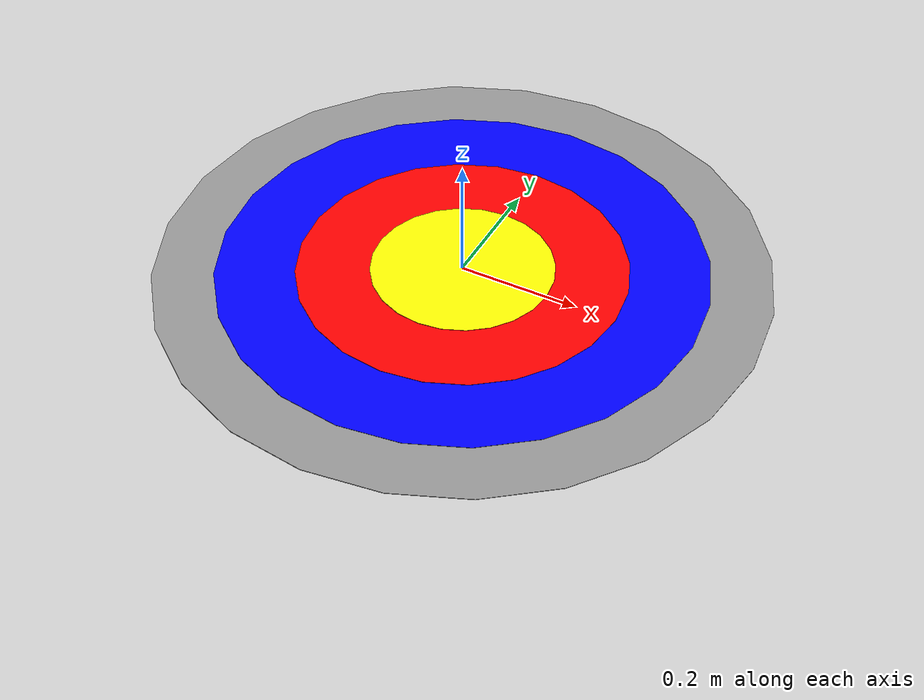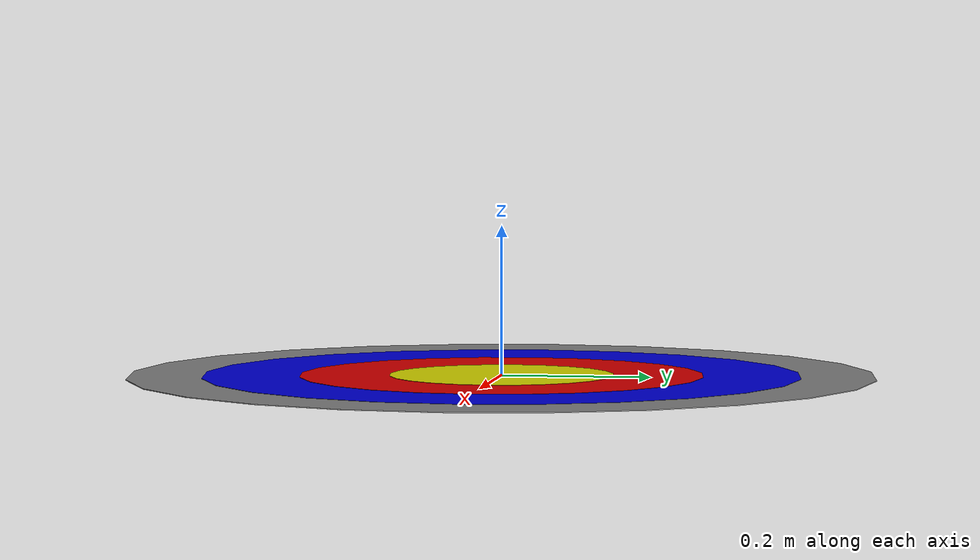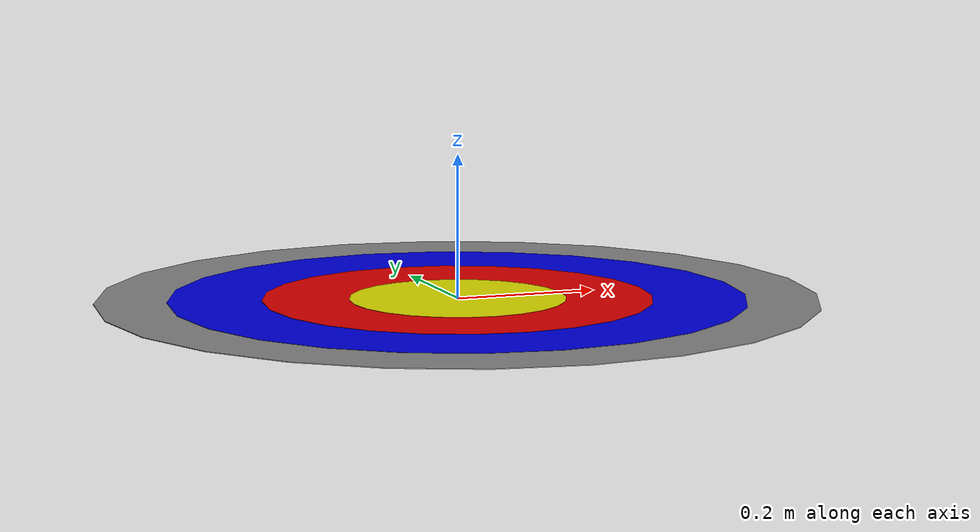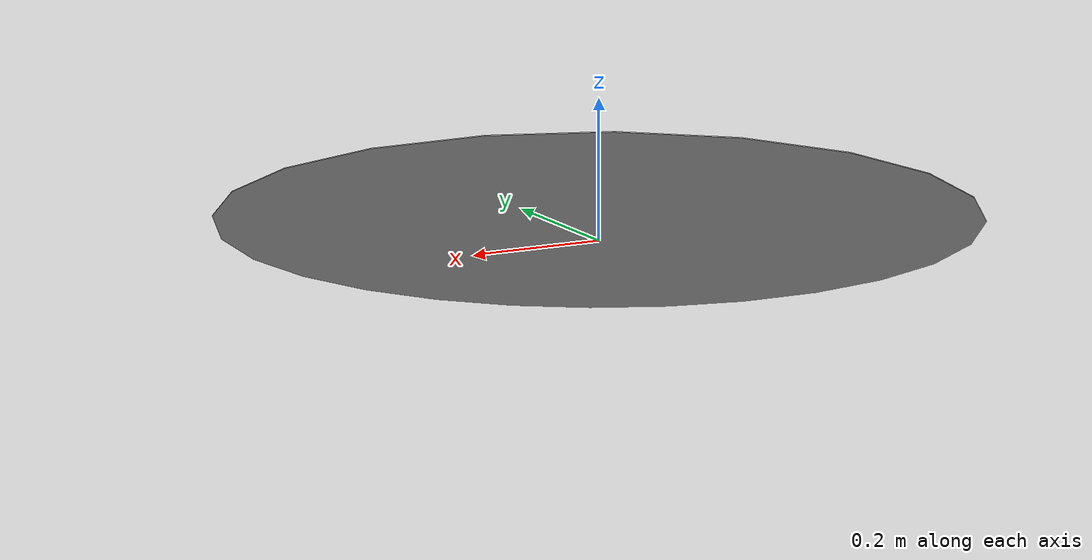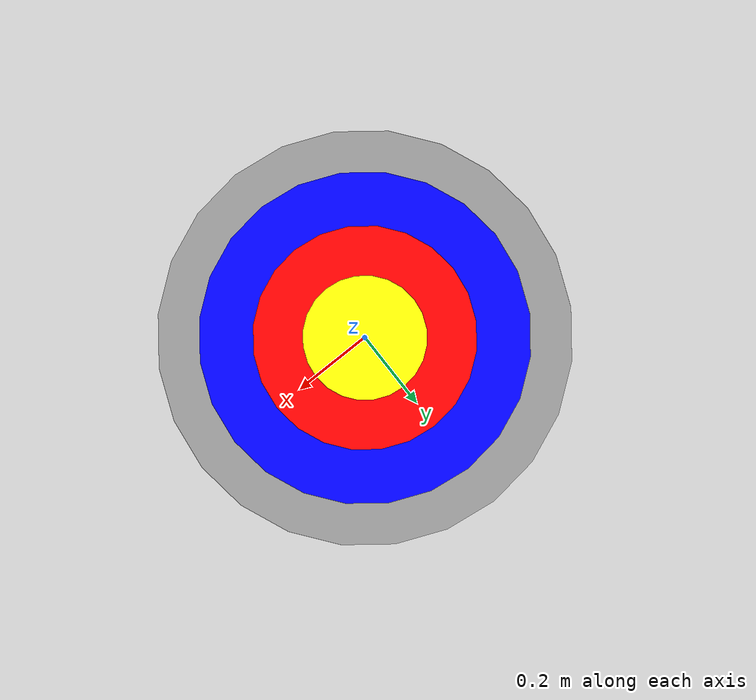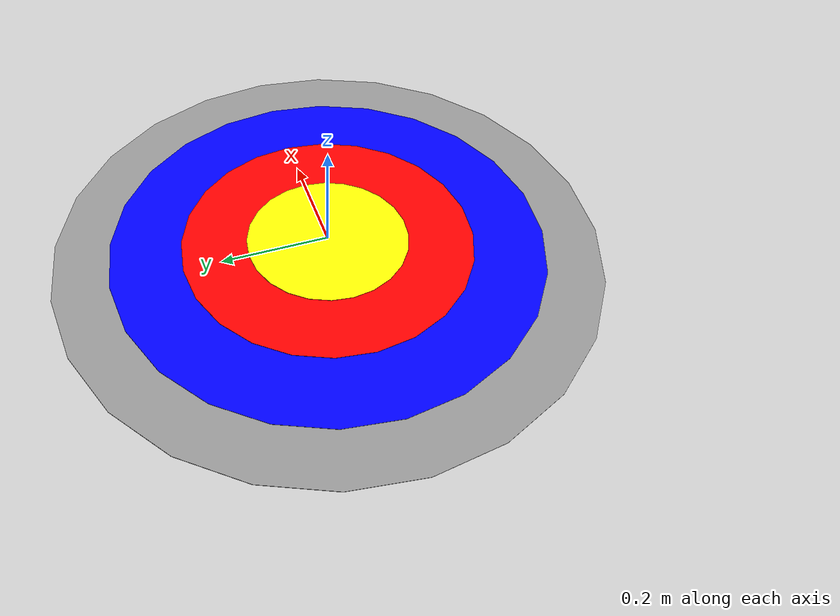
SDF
<?xml version='1.0'?>
<sdf version='1.7'>
  <model name='Target'>
    <link name='link_4'>
      <inertial>
        <mass>1</mass>
        <inertia>
          <ixx>0.145833</ixx>
          <ixy>0</ixy>
          <ixz>0</ixz>
          <iyy>0.145833</iyy>
          <iyz>0</iyz>
          <izz>0.125</izz>
        </inertia>
        <pose>0 0 0 0 -0 0</pose>
      </inertial>
      <pose>0 0 -0.00075 0 -0 0</pose>
      <gravity>0</gravity>
      <self_collide>0</self_collide>
      <kinematic>1</kinematic>
      <enable_wind>0</enable_wind>
      <visual name='visual'>
        <pose>0 0 0 0 -0 0</pose>
        <geometry>
          <cylinder>
            <radius>0.5</radius>
            <length>0.001</length>
          </cylinder>
        </geometry>
        <material>
          <lighting>1</lighting>
          <script>
            <uri>file://media/materials/scripts/gazebo.material</uri>
            <name>Gazebo/Grey</name>
          </script>
          <shader type='pixel'>
            <normal_map>__default__</normal_map>
          </shader>
          <ambient>0 0 0 1</ambient>
          <diffuse>0 0 0 1</diffuse>
          <specular>0.01 0.01 0.01 1</specular>
          <emissive>0 0 0 1</emissive>
        </material>
        <transparency>0</transparency>
        <cast_shadows>1</cast_shadows>
      </visual>
    </link>
    <link name='link_4_clone'>
      <inertial>
        <mass>1</mass>
        <inertia>
          <ixx>0.145833</ixx>
          <ixy>0</ixy>
          <ixz>0</ixz>
          <iyy>0.145833</iyy>
          <iyz>0</iyz>
          <izz>0.125</izz>
        </inertia>
        <pose>0 0 0 0 -0 0</pose>
      </inertial>
      <pose>0 0 -0.00025 0 -0 0</pose>
      <gravity>0</gravity>
      <self_collide>0</self_collide>
      <kinematic>1</kinematic>
      <enable_wind>0</enable_wind>
      <visual name='visual'>
        <pose>0 0 0 0 -0 0</pose>
        <geometry>
          <cylinder>
            <radius>0.4</radius>
            <length>0.001</length>
          </cylinder>
        </geometry>
        <material>
          <lighting>1</lighting>
          <script>
            <uri>file://media/materials/scripts/gazebo.material</uri>
            <name>Gazebo/Grey</name>
          </script>
          <shader type='pixel'>
            <normal_map>__default__</normal_map>
          </shader>
          <ambient>0 0 1 1</ambient>
          <diffuse>0 0 1 1</diffuse>
          <specular>0.01 0.01 0.01 1</specular>
          <emissive>0 0 0 1</emissive>
        </material>
        <transparency>0</transparency>
        <cast_shadows>1</cast_shadows>
      </visual>
    </link>
    <link name='link_4_clone_clone'>
      <inertial>
        <mass>1</mass>
        <inertia>
          <ixx>0.145833</ixx>
          <ixy>0</ixy>
          <ixz>0</ixz>
          <iyy>0.145833</iyy>
          <iyz>0</iyz>
          <izz>0.125</izz>
        </inertia>
        <pose>0 0 0 0 -0 0</pose>
      </inertial>
      <pose>0 0 0.00025 0 -0 0</pose>
      <gravity>1</gravity>
      <self_collide>0</self_collide>
      <kinematic>1</kinematic>
      <enable_wind>0</enable_wind>
      <visual name='visual'>
        <pose>0 0 0 0 -0 0</pose>
        <geometry>
          <cylinder>
            <radius>0.27</radius>
            <length>0.001</length>
          </cylinder>
        </geometry>
        <material>
          <lighting>1</lighting>
          <script>
            <uri>file://media/materials/scripts/gazebo.material</uri>
            <name>Gazebo/Grey</name>
          </script>
          <shader type='pixel'>
            <normal_map>__default__</normal_map>
          </shader>
          <ambient>1 0 0 1</ambient>
          <diffuse>1 0 0 1</diffuse>
          <specular>0.01 0.01 0.01 1</specular>
          <emissive>0 0 0 1</emissive>
        </material>
        <transparency>0</transparency>
        <cast_shadows>1</cast_shadows>
      </visual>
    </link>
    <link name='link_4_clone_clone_clone'>
      <inertial>
        <mass>1</mass>
        <inertia>
          <ixx>0.145833</ixx>
          <ixy>0</ixy>
          <ixz>0</ixz>
          <iyy>0.145833</iyy>
          <iyz>0</iyz>
          <izz>0.125</izz>
        </inertia>
        <pose>0 0 0 0 -0 0</pose>
      </inertial>
      <pose>0 0 0.00075 0 -0 0</pose>
      <gravity>0</gravity>
      <self_collide>0</self_collide>
      <kinematic>1</kinematic>
      <enable_wind>0</enable_wind>
      <visual name='visual'>
        <pose>0 0 0 0 -0 0</pose>
        <geometry>
          <cylinder>
            <radius>0.15</radius>
            <length>0.001</length>
          </cylinder>
        </geometry>
        <material>
          <lighting>1</lighting>
          <script>
            <uri>file://media/materials/scripts/gazebo.material</uri>
            <name>Gazebo/Grey</name>
          </script>
          <shader type='pixel'>
            <normal_map>__default__</normal_map>
          </shader>
          <ambient>1 1 0 1</ambient>
          <diffuse>1 1 0 1</diffuse>
          <specular>0.01 0.01 0.01 1</specular>
          <emissive>0 0 0 1</emissive>
        </material>
        <transparency>0</transparency>
        <cast_shadows>1</cast_shadows>
      </visual>
    </link>
    <static>0</static>
    <allow_auto_disable>1</allow_auto_disable>
  </model>
</sdf>
